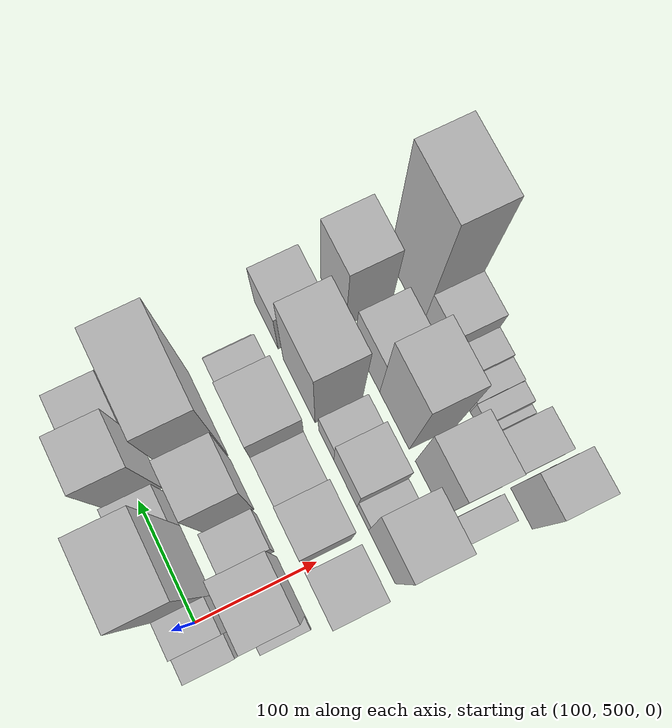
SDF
<sdf version="1.6">
 <world name="default">
  <model name="building_39">
   <static>1</static>
   <pose>100.0000 474.3884 0 0.000000 0.000000 0.000000</pose>
   <link name="link">
    <pose>0 0 18.00 0 0 0</pose>
    <collision name="collision"><geometry><box><size>40.0000 19.0501 36.0000</size></box></geometry></collision>
    <visual name="visual">
     <cast_shadows>0</cast_shadows>
     <geometry><box><size>40.0000 19.0501 36.0000</size></box></geometry>
     <material>
      <script>
       <uri>model://HANNAS_wall/materials/scripts</uri>
       <uri>model://HANNAS_wall/materials/textures</uri>
       <name>vrc/HANNAS_wall</name>
      </script>
     </material>
    </visual>
   </link>
  </model>
  <model name="building_40">
   <static>1</static>
   <pose>100.0000 498.1025 0 0.000000 0.000000 0.000000</pose>
   <link name="link">
    <pose>0 0 24.00 0 0 0</pose>
    <collision name="collision"><geometry><box><size>40.0000 28.3781 48.0000</size></box></geometry></collision>
    <visual name="visual">
     <cast_shadows>0</cast_shadows>
     <geometry><box><size>40.0000 28.3781 48.0000</size></box></geometry>
     <material>
      <script>
       <uri>model://HANNAS_wall/materials/scripts</uri>
       <uri>model://HANNAS_wall/materials/textures</uri>
       <name>vrc/HANNAS_wall</name>
      </script>
     </material>
    </visual>
   </link>
  </model>
  <model name="building_41">
   <static>1</static>
   <pose>100.0000 540.8449 0 0.000000 0.000000 0.000000</pose>
   <link name="link">
    <pose>0 0 91.50 0 0 0</pose>
    <collision name="collision"><geometry><box><size>40.0000 57.1067 183.0000</size></box></geometry></collision>
    <visual name="visual">
     <cast_shadows>0</cast_shadows>
     <geometry><box><size>40.0000 57.1067 183.0000</size></box></geometry>
     <material>
      <script>
       <uri>model://HANNAS_wall/materials/scripts</uri>
       <uri>model://HANNAS_wall/materials/textures</uri>
       <name>vrc/HANNAS_wall</name>
      </script>
     </material>
    </visual>
   </link>
  </model>
  <model name="building_42">
   <static>1</static>
   <pose>100.0000 583.5705 0 0.000000 0.000000 0.000000</pose>
   <link name="link">
    <pose>0 0 27.00 0 0 0</pose>
    <collision name="collision"><geometry><box><size>40.0000 28.3445 54.0000</size></box></geometry></collision>
    <visual name="visual">
     <cast_shadows>0</cast_shadows>
     <geometry><box><size>40.0000 28.3445 54.0000</size></box></geometry>
     <material>
      <script>
       <uri>model://HANNAS_wall/materials/scripts</uri>
       <uri>model://HANNAS_wall/materials/textures</uri>
       <name>vrc/HANNAS_wall</name>
      </script>
     </material>
    </visual>
   </link>
  </model>
  <model name="building_43">
   <static>1</static>
   <pose>100.0000 621.0852 0 0.000000 0.000000 0.000000</pose>
   <link name="link">
    <pose>0 0 63.00 0 0 0</pose>
    <collision name="collision"><geometry><box><size>40.0000 40.6848 126.0000</size></box></geometry></collision>
    <visual name="visual">
     <cast_shadows>0</cast_shadows>
     <geometry><box><size>40.0000 40.6848 126.0000</size></box></geometry>
     <material>
      <script>
       <uri>model://HANNAS_wall/materials/scripts</uri>
       <uri>model://HANNAS_wall/materials/textures</uri>
       <name>vrc/HANNAS_wall</name>
      </script>
     </material>
    </visual>
   </link>
  </model>
  <model name="building_44">
   <static>1</static>
   <pose>100.0000 661.8343 0 0.000000 0.000000 0.000000</pose>
   <link name="link">
    <pose>0 0 37.50 0 0 0</pose>
    <collision name="collision"><geometry><box><size>40.0000 40.8136 75.0000</size></box></geometry></collision>
    <visual name="visual">
     <cast_shadows>0</cast_shadows>
     <geometry><box><size>40.0000 40.8136 75.0000</size></box></geometry>
     <material>
      <script>
       <uri>model://HANNAS_wall/materials/scripts</uri>
       <uri>model://HANNAS_wall/materials/textures</uri>
       <name>vrc/HANNAS_wall</name>
      </script>
     </material>
    </visual>
   </link>
  </model>
  <model name="building_89">
   <static>1</static>
   <pose>155.0000 463.7974 0 0.000000 0.000000 0.000000</pose>
   <link name="link">
    <pose>0 0 10.50 0 0 0</pose>
    <collision name="collision"><geometry><box><size>40.0000 10.4770 21.0000</size></box></geometry></collision>
    <visual name="visual">
     <cast_shadows>0</cast_shadows>
     <geometry><box><size>40.0000 10.4770 21.0000</size></box></geometry>
     <material>
      <script>
       <uri>model://HANNAS_wall/materials/scripts</uri>
       <uri>model://HANNAS_wall/materials/textures</uri>
       <name>vrc/HANNAS_wall</name>
      </script>
     </material>
    </visual>
   </link>
  </model>
  <model name="building_90">
   <static>1</static>
   <pose>155.0000 492.8624 0 0.000000 0.000000 0.000000</pose>
   <link name="link">
    <pose>0 0 69.00 0 0 0</pose>
    <collision name="collision"><geometry><box><size>40.0000 47.6530 138.0000</size></box></geometry></collision>
    <visual name="visual">
     <cast_shadows>0</cast_shadows>
     <geometry><box><size>40.0000 47.6530 138.0000</size></box></geometry>
     <material>
      <script>
       <uri>model://HANNAS_wall/materials/scripts</uri>
       <uri>model://HANNAS_wall/materials/textures</uri>
       <name>vrc/HANNAS_wall</name>
      </script>
     </material>
    </visual>
   </link>
  </model>
  <model name="building_91">
   <static>1</static>
   <pose>155.0000 536.0569 0 0.000000 0.000000 0.000000</pose>
   <link name="link">
    <pose>0 0 28.50 0 0 0</pose>
    <collision name="collision"><geometry><box><size>40.0000 30.7359 57.0000</size></box></geometry></collision>
    <visual name="visual">
     <cast_shadows>0</cast_shadows>
     <geometry><box><size>40.0000 30.7359 57.0000</size></box></geometry>
     <material>
      <script>
       <uri>model://HANNAS_wall/materials/scripts</uri>
       <uri>model://HANNAS_wall/materials/textures</uri>
       <name>vrc/HANNAS_wall</name>
      </script>
     </material>
    </visual>
   </link>
  </model>
  <model name="building_92">
   <static>1</static>
   <pose>155.0000 576.3079 0 0.000000 0.000000 0.000000</pose>
   <link name="link">
    <pose>0 0 64.50 0 0 0</pose>
    <collision name="collision"><geometry><box><size>40.0000 41.7662 129.0000</size></box></geometry></collision>
    <visual name="visual">
     <cast_shadows>0</cast_shadows>
     <geometry><box><size>40.0000 41.7662 129.0000</size></box></geometry>
     <material>
      <script>
       <uri>model://HANNAS_wall/materials/scripts</uri>
       <uri>model://HANNAS_wall/materials/textures</uri>
       <name>vrc/HANNAS_wall</name>
      </script>
     </material>
    </visual>
   </link>
  </model>
  <model name="building_93">
   <static>1</static>
   <pose>155.0000 637.2382 0 0.000000 0.000000 0.000000</pose>
   <link name="link">
    <pose>0 0 91.50 0 0 0</pose>
    <collision name="collision"><geometry><box><size>40.0000 72.0943 183.0000</size></box></geometry></collision>
    <visual name="visual">
     <cast_shadows>0</cast_shadows>
     <geometry><box><size>40.0000 72.0943 183.0000</size></box></geometry>
     <material>
      <script>
       <uri>model://HANNAS_wall/materials/scripts</uri>
       <uri>model://HANNAS_wall/materials/textures</uri>
       <name>vrc/HANNAS_wall</name>
      </script>
     </material>
    </visual>
   </link>
  </model>
  <model name="building_138">
   <static>1</static>
   <pose>210.0000 475.4661 0 0.000000 0.000000 0.000000</pose>
   <link name="link">
    <pose>0 0 52.50 0 0 0</pose>
    <collision name="collision"><geometry><box><size>40.0000 39.5887 105.0000</size></box></geometry></collision>
    <visual name="visual">
     <cast_shadows>0</cast_shadows>
     <geometry><box><size>40.0000 39.5887 105.0000</size></box></geometry>
     <material>
      <script>
       <uri>model://HANNAS_wall/materials/scripts</uri>
       <uri>model://HANNAS_wall/materials/textures</uri>
       <name>vrc/HANNAS_wall</name>
      </script>
     </material>
    </visual>
   </link>
  </model>
  <model name="building_139">
   <static>1</static>
   <pose>210.0000 522.0845 0 0.000000 0.000000 0.000000</pose>
   <link name="link">
    <pose>0 0 52.50 0 0 0</pose>
    <collision name="collision"><geometry><box><size>40.0000 37.6482 105.0000</size></box></geometry></collision>
    <visual name="visual">
     <cast_shadows>0</cast_shadows>
     <geometry><box><size>40.0000 37.6482 105.0000</size></box></geometry>
     <material>
      <script>
       <uri>model://HANNAS_wall/materials/scripts</uri>
       <uri>model://HANNAS_wall/materials/textures</uri>
       <name>vrc/HANNAS_wall</name>
      </script>
     </material>
    </visual>
   </link>
  </model>
  <model name="building_140">
   <static>1</static>
   <pose>210.0000 560.6796 0 0.000000 0.000000 0.000000</pose>
   <link name="link">
    <pose>0 0 37.50 0 0 0</pose>
    <collision name="collision"><geometry><box><size>40.0000 39.5419 75.0000</size></box></geometry></collision>
    <visual name="visual">
     <cast_shadows>0</cast_shadows>
     <geometry><box><size>40.0000 39.5419 75.0000</size></box></geometry>
     <material>
      <script>
       <uri>model://HANNAS_wall/materials/scripts</uri>
       <uri>model://HANNAS_wall/materials/textures</uri>
       <name>vrc/HANNAS_wall</name>
      </script>
     </material>
    </visual>
   </link>
  </model>
  <model name="building_141">
   <static>1</static>
   <pose>210.0000 603.6416 0 0.000000 0.000000 0.000000</pose>
   <link name="link">
    <pose>0 0 60.00 0 0 0</pose>
    <collision name="collision"><geometry><box><size>40.0000 46.3823 120.0000</size></box></geometry></collision>
    <visual name="visual">
     <cast_shadows>0</cast_shadows>
     <geometry><box><size>40.0000 46.3823 120.0000</size></box></geometry>
     <material>
      <script>
       <uri>model://HANNAS_wall/materials/scripts</uri>
       <uri>model://HANNAS_wall/materials/textures</uri>
       <name>vrc/HANNAS_wall</name>
      </script>
     </material>
    </visual>
   </link>
  </model>
  <model name="building_142">
   <static>1</static>
   <pose>210.0000 643.5115 0 0.000000 0.000000 0.000000</pose>
   <link name="link">
    <pose>0 0 31.50 0 0 0</pose>
    <collision name="collision"><geometry><box><size>40.0000 33.3575 63.0000</size></box></geometry></collision>
    <visual name="visual">
     <cast_shadows>0</cast_shadows>
     <geometry><box><size>40.0000 33.3575 63.0000</size></box></geometry>
     <material>
      <script>
       <uri>model://HANNAS_wall/materials/scripts</uri>
       <uri>model://HANNAS_wall/materials/textures</uri>
       <name>vrc/HANNAS_wall</name>
      </script>
     </material>
    </visual>
   </link>
  </model>
  <model name="building_143">
   <static>1</static>
   <pose>210.0000 666.1431 0 0.000000 0.000000 0.000000</pose>
   <link name="link">
    <pose>0 0 12.00 0 0 0</pose>
    <collision name="collision"><geometry><box><size>40.0000 11.9057 24.0000</size></box></geometry></collision>
    <visual name="visual">
     <cast_shadows>0</cast_shadows>
     <geometry><box><size>40.0000 11.9057 24.0000</size></box></geometry>
     <material>
      <script>
       <uri>model://HANNAS_wall/materials/scripts</uri>
       <uri>model://HANNAS_wall/materials/textures</uri>
       <name>vrc/HANNAS_wall</name>
      </script>
     </material>
    </visual>
   </link>
  </model>
  <model name="building_187">
   <static>1</static>
   <pose>265.0000 481.8986 0 0.000000 0.000000 0.000000</pose>
   <link name="link">
    <pose>0 0 72.00 0 0 0</pose>
    <collision name="collision"><geometry><box><size>40.0000 43.6792 144.0000</size></box></geometry></collision>
    <visual name="visual">
     <cast_shadows>0</cast_shadows>
     <geometry><box><size>40.0000 43.6792 144.0000</size></box></geometry>
     <material>
      <script>
       <uri>model://HANNAS_wall/materials/scripts</uri>
       <uri>model://HANNAS_wall/materials/textures</uri>
       <name>vrc/HANNAS_wall</name>
      </script>
     </material>
    </visual>
   </link>
  </model>
  <model name="building_188">
   <static>1</static>
   <pose>265.0000 513.4515 0 0.000000 0.000000 0.000000</pose>
   <link name="link">
    <pose>0 0 16.50 0 0 0</pose>
    <collision name="collision"><geometry><box><size>40.0000 19.4266 33.0000</size></box></geometry></collision>
    <visual name="visual">
     <cast_shadows>0</cast_shadows>
     <geometry><box><size>40.0000 19.4266 33.0000</size></box></geometry>
     <material>
      <script>
       <uri>model://HANNAS_wall/materials/scripts</uri>
       <uri>model://HANNAS_wall/materials/textures</uri>
       <name>vrc/HANNAS_wall</name>
      </script>
     </material>
    </visual>
   </link>
  </model>
  <model name="building_189">
   <static>1</static>
   <pose>265.0000 542.7818 0 0.000000 0.000000 0.000000</pose>
   <link name="link">
    <pose>0 0 34.50 0 0 0</pose>
    <collision name="collision"><geometry><box><size>40.0000 39.2340 69.0000</size></box></geometry></collision>
    <visual name="visual">
     <cast_shadows>0</cast_shadows>
     <geometry><box><size>40.0000 39.2340 69.0000</size></box></geometry>
     <material>
      <script>
       <uri>model://HANNAS_wall/materials/scripts</uri>
       <uri>model://HANNAS_wall/materials/textures</uri>
       <name>vrc/HANNAS_wall</name>
      </script>
     </material>
    </visual>
   </link>
  </model>
  <model name="building_190">
   <static>1</static>
   <pose>265.0000 575.4847 0 0.000000 0.000000 0.000000</pose>
   <link name="link">
    <pose>0 0 24.00 0 0 0</pose>
    <collision name="collision"><geometry><box><size>40.0000 26.1719 48.0000</size></box></geometry></collision>
    <visual name="visual">
     <cast_shadows>0</cast_shadows>
     <geometry><box><size>40.0000 26.1719 48.0000</size></box></geometry>
     <material>
      <script>
       <uri>model://HANNAS_wall/materials/scripts</uri>
       <uri>model://HANNAS_wall/materials/textures</uri>
       <name>vrc/HANNAS_wall</name>
      </script>
     </material>
    </visual>
   </link>
  </model>
  <model name="building_191">
   <static>1</static>
   <pose>265.0000 622.3760 0 0.000000 0.000000 0.000000</pose>
   <link name="link">
    <pose>0 0 70.50 0 0 0</pose>
    <collision name="collision"><geometry><box><size>40.0000 55.6106 141.0000</size></box></geometry></collision>
    <visual name="visual">
     <cast_shadows>0</cast_shadows>
     <geometry><box><size>40.0000 55.6106 141.0000</size></box></geometry>
     <material>
      <script>
       <uri>model://HANNAS_wall/materials/scripts</uri>
       <uri>model://HANNAS_wall/materials/textures</uri>
       <name>vrc/HANNAS_wall</name>
      </script>
     </material>
    </visual>
   </link>
  </model>
  <model name="building_192">
   <static>1</static>
   <pose>265.0000 680.4960 0 0.000000 0.000000 0.000000</pose>
   <link name="link">
    <pose>0 0 37.50 0 0 0</pose>
    <collision name="collision"><geometry><box><size>40.0000 42.6293 75.0000</size></box></geometry></collision>
    <visual name="visual">
     <cast_shadows>0</cast_shadows>
     <geometry><box><size>40.0000 42.6293 75.0000</size></box></geometry>
     <material>
      <script>
       <uri>model://HANNAS_wall/materials/scripts</uri>
       <uri>model://HANNAS_wall/materials/textures</uri>
       <name>vrc/HANNAS_wall</name>
      </script>
     </material>
    </visual>
   </link>
  </model>
  <model name="building_233">
   <static>1</static>
   <pose>320.0000 472.7233 0 0.000000 0.000000 0.000000</pose>
   <link name="link">
    <pose>0 0 19.50 0 0 0</pose>
    <collision name="collision"><geometry><box><size>40.0000 21.1401 39.0000</size></box></geometry></collision>
    <visual name="visual">
     <cast_shadows>0</cast_shadows>
     <geometry><box><size>40.0000 21.1401 39.0000</size></box></geometry>
     <material>
      <script>
       <uri>model://HANNAS_wall/materials/scripts</uri>
       <uri>model://HANNAS_wall/materials/textures</uri>
       <name>vrc/HANNAS_wall</name>
      </script>
     </material>
    </visual>
   </link>
  </model>
  <model name="building_234">
   <static>1</static>
   <pose>320.0000 511.5528 0 0.000000 0.000000 0.000000</pose>
   <link name="link">
    <pose>0 0 58.50 0 0 0</pose>
    <collision name="collision"><geometry><box><size>40.0000 46.5190 117.0000</size></box></geometry></collision>
    <visual name="visual">
     <cast_shadows>0</cast_shadows>
     <geometry><box><size>40.0000 46.5190 117.0000</size></box></geometry>
     <material>
      <script>
       <uri>model://HANNAS_wall/materials/scripts</uri>
       <uri>model://HANNAS_wall/materials/textures</uri>
       <name>vrc/HANNAS_wall</name>
      </script>
     </material>
    </visual>
   </link>
  </model>
  <model name="building_235">
   <static>1</static>
   <pose>320.0000 569.4947 0 0.000000 0.000000 0.000000</pose>
   <link name="link">
    <pose>0 0 72.00 0 0 0</pose>
    <collision name="collision"><geometry><box><size>40.0000 49.3646 144.0000</size></box></geometry></collision>
    <visual name="visual">
     <cast_shadows>0</cast_shadows>
     <geometry><box><size>40.0000 49.3646 144.0000</size></box></geometry>
     <material>
      <script>
       <uri>model://HANNAS_wall/materials/scripts</uri>
       <uri>model://HANNAS_wall/materials/textures</uri>
       <name>vrc/HANNAS_wall</name>
      </script>
     </material>
    </visual>
   </link>
  </model>
  <model name="building_236">
   <static>1</static>
   <pose>320.0000 615.8633 0 0.000000 0.000000 0.000000</pose>
   <link name="link">
    <pose>0 0 40.50 0 0 0</pose>
    <collision name="collision"><geometry><box><size>40.0000 43.3726 81.0000</size></box></geometry></collision>
    <visual name="visual">
     <cast_shadows>0</cast_shadows>
     <geometry><box><size>40.0000 43.3726 81.0000</size></box></geometry>
     <material>
      <script>
       <uri>model://HANNAS_wall/materials/scripts</uri>
       <uri>model://HANNAS_wall/materials/textures</uri>
       <name>vrc/HANNAS_wall</name>
      </script>
     </material>
    </visual>
   </link>
  </model>
  <model name="building_237">
   <static>1</static>
   <pose>320.0000 641.2283 0 0.000000 0.000000 0.000000</pose>
   <link name="link">
    <pose>0 0 7.50 0 0 0</pose>
    <collision name="collision"><geometry><box><size>40.0000 7.3574 15.0000</size></box></geometry></collision>
    <visual name="visual">
     <cast_shadows>0</cast_shadows>
     <geometry><box><size>40.0000 7.3574 15.0000</size></box></geometry>
     <material>
      <script>
       <uri>model://HANNAS_wall/materials/scripts</uri>
       <uri>model://HANNAS_wall/materials/textures</uri>
       <name>vrc/HANNAS_wall</name>
      </script>
     </material>
    </visual>
   </link>
  </model>
  <model name="building_238">
   <static>1</static>
   <pose>320.0000 674.7308 0 0.000000 0.000000 0.000000</pose>
   <link name="link">
    <pose>0 0 57.00 0 0 0</pose>
    <collision name="collision"><geometry><box><size>40.0000 43.6476 114.0000</size></box></geometry></collision>
    <visual name="visual">
     <cast_shadows>0</cast_shadows>
     <geometry><box><size>40.0000 43.6476 114.0000</size></box></geometry>
     <material>
      <script>
       <uri>model://HANNAS_wall/materials/scripts</uri>
       <uri>model://HANNAS_wall/materials/textures</uri>
       <name>vrc/HANNAS_wall</name>
      </script>
     </material>
    </visual>
   </link>
  </model>
  <model name="building_281">
   <static>1</static>
   <pose>375.0000 467.7833 0 0.000000 0.000000 0.000000</pose>
   <link name="link">
    <pose>0 0 46.50 0 0 0</pose>
    <collision name="collision"><geometry><box><size>40.0000 34.5592 93.0000</size></box></geometry></collision>
    <visual name="visual">
     <cast_shadows>0</cast_shadows>
     <geometry><box><size>40.0000 34.5592 93.0000</size></box></geometry>
     <material>
      <script>
       <uri>model://HANNAS_wall/materials/scripts</uri>
       <uri>model://HANNAS_wall/materials/textures</uri>
       <name>vrc/HANNAS_wall</name>
      </script>
     </material>
    </visual>
   </link>
  </model>
  <model name="building_282">
   <static>1</static>
   <pose>375.0000 505.8705 0 0.000000 0.000000 0.000000</pose>
   <link name="link">
    <pose>0 0 28.50 0 0 0</pose>
    <collision name="collision"><geometry><box><size>40.0000 33.6152 57.0000</size></box></geometry></collision>
    <visual name="visual">
     <cast_shadows>0</cast_shadows>
     <geometry><box><size>40.0000 33.6152 57.0000</size></box></geometry>
     <material>
      <script>
       <uri>model://HANNAS_wall/materials/scripts</uri>
       <uri>model://HANNAS_wall/materials/textures</uri>
       <name>vrc/HANNAS_wall</name>
      </script>
     </material>
    </visual>
   </link>
  </model>
  <model name="building_283">
   <static>1</static>
   <pose>375.0000 529.3356 0 0.000000 0.000000 0.000000</pose>
   <link name="link">
    <pose>0 0 9.00 0 0 0</pose>
    <collision name="collision"><geometry><box><size>40.0000 7.3149 18.0000</size></box></geometry></collision>
    <visual name="visual">
     <cast_shadows>0</cast_shadows>
     <geometry><box><size>40.0000 7.3149 18.0000</size></box></geometry>
     <material>
      <script>
       <uri>model://HANNAS_wall/materials/scripts</uri>
       <uri>model://HANNAS_wall/materials/textures</uri>
       <name>vrc/HANNAS_wall</name>
      </script>
     </material>
    </visual>
   </link>
  </model>
  <model name="building_284">
   <static>1</static>
   <pose>375.0000 541.3019 0 0.000000 0.000000 0.000000</pose>
   <link name="link">
    <pose>0 0 15.00 0 0 0</pose>
    <collision name="collision"><geometry><box><size>40.0000 16.6178 30.0000</size></box></geometry></collision>
    <visual name="visual">
     <cast_shadows>0</cast_shadows>
     <geometry><box><size>40.0000 16.6178 30.0000</size></box></geometry>
     <material>
      <script>
       <uri>model://HANNAS_wall/materials/scripts</uri>
       <uri>model://HANNAS_wall/materials/textures</uri>
       <name>vrc/HANNAS_wall</name>
      </script>
     </material>
    </visual>
   </link>
  </model>
  <model name="building_285">
   <static>1</static>
   <pose>375.0000 559.2867 0 0.000000 0.000000 0.000000</pose>
   <link name="link">
    <pose>0 0 16.50 0 0 0</pose>
    <collision name="collision"><geometry><box><size>40.0000 19.3516 33.0000</size></box></geometry></collision>
    <visual name="visual">
     <cast_shadows>0</cast_shadows>
     <geometry><box><size>40.0000 19.3516 33.0000</size></box></geometry>
     <material>
      <script>
       <uri>model://HANNAS_wall/materials/scripts</uri>
       <uri>model://HANNAS_wall/materials/textures</uri>
       <name>vrc/HANNAS_wall</name>
      </script>
     </material>
    </visual>
   </link>
  </model>
  <model name="building_286">
   <static>1</static>
   <pose>375.0000 580.6532 0 0.000000 0.000000 0.000000</pose>
   <link name="link">
    <pose>0 0 19.50 0 0 0</pose>
    <collision name="collision"><geometry><box><size>40.0000 23.3815 39.0000</size></box></geometry></collision>
    <visual name="visual">
     <cast_shadows>0</cast_shadows>
     <geometry><box><size>40.0000 23.3815 39.0000</size></box></geometry>
     <material>
      <script>
       <uri>model://HANNAS_wall/materials/scripts</uri>
       <uri>model://HANNAS_wall/materials/textures</uri>
       <name>vrc/HANNAS_wall</name>
      </script>
     </material>
    </visual>
   </link>
  </model>
  <model name="building_287">
   <static>1</static>
   <pose>375.0000 610.1993 0 0.000000 0.000000 0.000000</pose>
   <link name="link">
    <pose>0 0 34.50 0 0 0</pose>
    <collision name="collision"><geometry><box><size>40.0000 35.7106 69.0000</size></box></geometry></collision>
    <visual name="visual">
     <cast_shadows>0</cast_shadows>
     <geometry><box><size>40.0000 35.7106 69.0000</size></box></geometry>
     <material>
      <script>
       <uri>model://HANNAS_wall/materials/scripts</uri>
       <uri>model://HANNAS_wall/materials/textures</uri>
       <name>vrc/HANNAS_wall</name>
      </script>
     </material>
    </visual>
   </link>
  </model>
  <model name="building_288">
   <static>1</static>
   <pose>375.0000 657.2467 0 0.000000 0.000000 0.000000</pose>
   <link name="link">
    <pose>0 0 96.00 0 0 0</pose>
    <collision name="collision"><geometry><box><size>40.0000 58.3841 192.0000</size></box></geometry></collision>
    <visual name="visual">
     <cast_shadows>0</cast_shadows>
     <geometry><box><size>40.0000 58.3841 192.0000</size></box></geometry>
     <material>
      <script>
       <uri>model://HANNAS_wall/materials/scripts</uri>
       <uri>model://HANNAS_wall/materials/textures</uri>
       <name>vrc/HANNAS_wall</name>
      </script>
     </material>
    </visual>
   </link>
  </model>
 </world>
</sdf>
